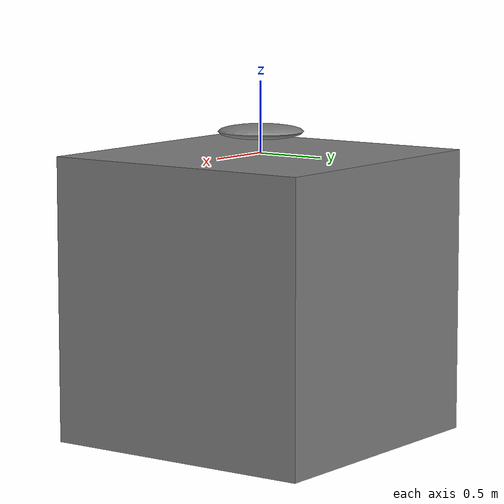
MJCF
<mujoco model="mesh-ellipsoid">
  <option gravity="0 0 -9.81" timestep="0.001" integrator="RK4"/>

  <asset>
    <mesh name="ground"
          vertex="-1 -1 -1  1 -1 -1  1 1 -1  -1 1 -1
                  -1 -1  1  1 -1  1  1 1  1  -1 1  1"
          face="0 2 1  0 3 2  4 5 6  4 6 7
                0 5 4  0 1 5  2 7 6  2 3 7
                0 7 3  0 4 7  1 6 5  1 2 6"/>
  </asset>

  <worldbody>
    <geom name="ground" type="mesh" mesh="ground" pos="0 0 -1"/>
    <body name="ellipsoid" pos="0 0 0.15">
      <joint type="free"/>
      <geom name="ellipsoid" type="ellipsoid" size="0.3 0.3 0.05" density="1000"/>
    </body>
  </worldbody>
</mujoco>
